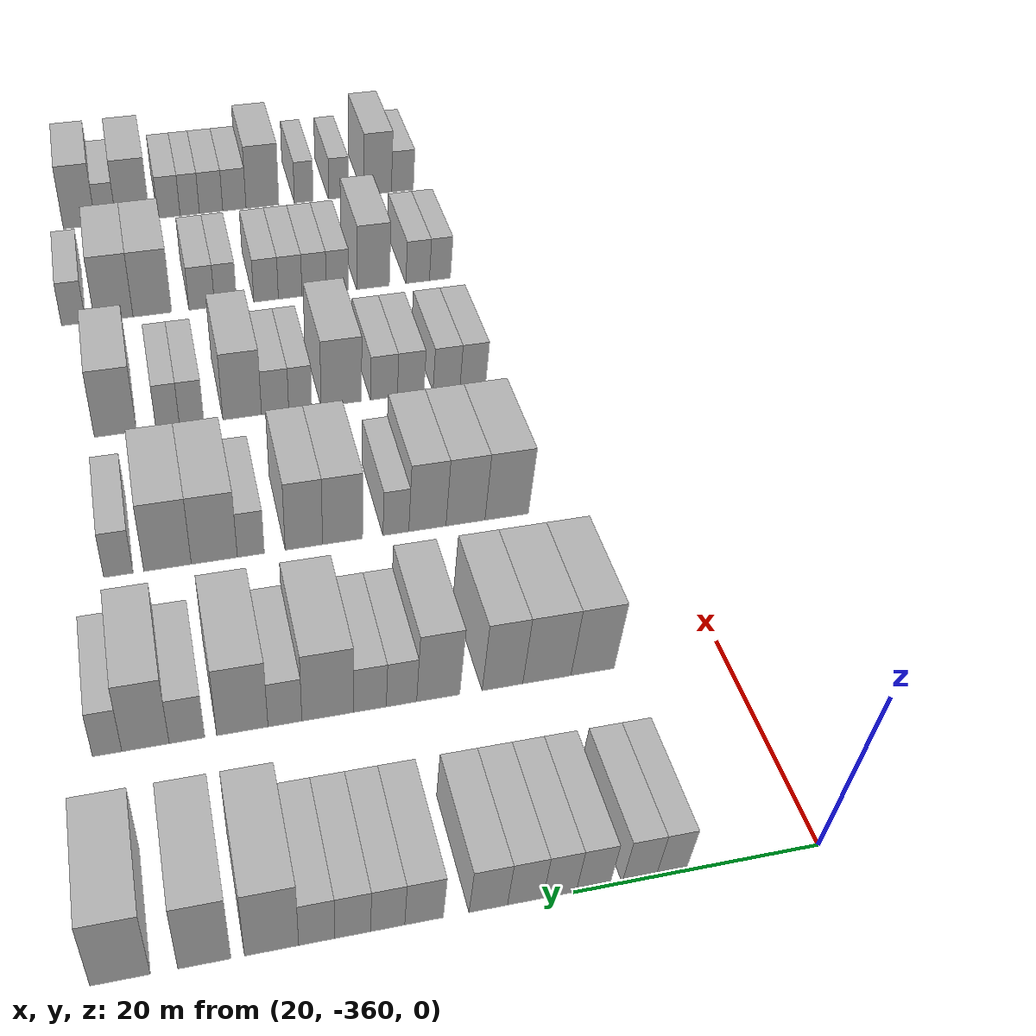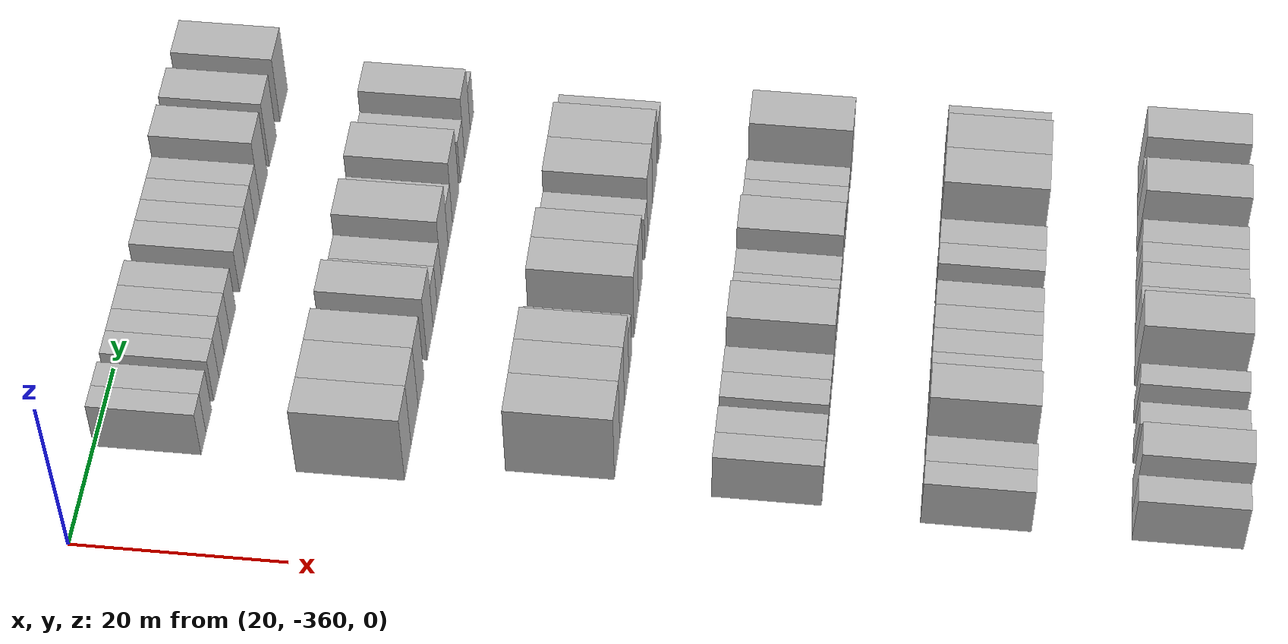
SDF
<sdf version="1.6">
 <world name="default">
  <model name="building_1">
   <static>1</static>
   <pose>25.0000 -347.7870 0 0.000000 0.000000 0.000000</pose>
   <link name="link">
    <pose>0 0 3.00 0 0 0</pose>
    <collision name="collision"><geometry><box><size>10.0000 2.4259 6.0000</size></box></geometry></collision>
    <visual name="visual">
     <cast_shadows>0</cast_shadows>
     <geometry><box><size>10.0000 2.4259 6.0000</size></box></geometry>
     <material>
      <script>
       <uri>model://HANNAS_wall/materials/scripts</uri>
       <uri>model://HANNAS_wall/materials/textures</uri>
       <name>vrc/HANNAS_wall</name>
      </script>
     </material>
    </visual>
   </link>
  </model>
  <model name="building_2">
   <static>1</static>
   <pose>25.0000 -345.2109 0 0.000000 0.000000 0.000000</pose>
   <link name="link">
    <pose>0 0 3.00 0 0 0</pose>
    <collision name="collision"><geometry><box><size>10.0000 2.7264 6.0000</size></box></geometry></collision>
    <visual name="visual">
     <cast_shadows>0</cast_shadows>
     <geometry><box><size>10.0000 2.7264 6.0000</size></box></geometry>
     <material>
      <script>
       <uri>model://HANNAS_wall/materials/scripts</uri>
       <uri>model://HANNAS_wall/materials/textures</uri>
       <name>vrc/HANNAS_wall</name>
      </script>
     </material>
    </visual>
   </link>
  </model>
  <model name="building_3">
   <static>1</static>
   <pose>25.0000 -341.5027 0 0.000000 0.000000 0.000000</pose>
   <link name="link">
    <pose>0 0 3.00 0 0 0</pose>
    <collision name="collision"><geometry><box><size>10.0000 2.6899 6.0000</size></box></geometry></collision>
    <visual name="visual">
     <cast_shadows>0</cast_shadows>
     <geometry><box><size>10.0000 2.6899 6.0000</size></box></geometry>
     <material>
      <script>
       <uri>model://HANNAS_wall/materials/scripts</uri>
       <uri>model://HANNAS_wall/materials/textures</uri>
       <name>vrc/HANNAS_wall</name>
      </script>
     </material>
    </visual>
   </link>
  </model>
  <model name="building_4">
   <static>1</static>
   <pose>25.0000 -338.8449 0 0.000000 0.000000 0.000000</pose>
   <link name="link">
    <pose>0 0 3.00 0 0 0</pose>
    <collision name="collision"><geometry><box><size>10.0000 2.6258 6.0000</size></box></geometry></collision>
    <visual name="visual">
     <cast_shadows>0</cast_shadows>
     <geometry><box><size>10.0000 2.6258 6.0000</size></box></geometry>
     <material>
      <script>
       <uri>model://HANNAS_wall/materials/scripts</uri>
       <uri>model://HANNAS_wall/materials/textures</uri>
       <name>vrc/HANNAS_wall</name>
      </script>
     </material>
    </visual>
   </link>
  </model>
  <model name="building_5">
   <static>1</static>
   <pose>25.0000 -336.1319 0 0.000000 0.000000 0.000000</pose>
   <link name="link">
    <pose>0 0 3.00 0 0 0</pose>
    <collision name="collision"><geometry><box><size>10.0000 2.8000 6.0000</size></box></geometry></collision>
    <visual name="visual">
     <cast_shadows>0</cast_shadows>
     <geometry><box><size>10.0000 2.8000 6.0000</size></box></geometry>
     <material>
      <script>
       <uri>model://HANNAS_wall/materials/scripts</uri>
       <uri>model://HANNAS_wall/materials/textures</uri>
       <name>vrc/HANNAS_wall</name>
      </script>
     </material>
    </visual>
   </link>
  </model>
  <model name="building_6">
   <static>1</static>
   <pose>25.0000 -333.2328 0 0.000000 0.000000 0.000000</pose>
   <link name="link">
    <pose>0 0 3.00 0 0 0</pose>
    <collision name="collision"><geometry><box><size>10.0000 2.9983 6.0000</size></box></geometry></collision>
    <visual name="visual">
     <cast_shadows>0</cast_shadows>
     <geometry><box><size>10.0000 2.9983 6.0000</size></box></geometry>
     <material>
      <script>
       <uri>model://HANNAS_wall/materials/scripts</uri>
       <uri>model://HANNAS_wall/materials/textures</uri>
       <name>vrc/HANNAS_wall</name>
      </script>
     </material>
    </visual>
   </link>
  </model>
  <model name="building_7">
   <static>1</static>
   <pose>25.0000 -328.2507 0 0.000000 0.000000 0.000000</pose>
   <link name="link">
    <pose>0 0 3.00 0 0 0</pose>
    <collision name="collision"><geometry><box><size>10.0000 2.9659 6.0000</size></box></geometry></collision>
    <visual name="visual">
     <cast_shadows>0</cast_shadows>
     <geometry><box><size>10.0000 2.9659 6.0000</size></box></geometry>
     <material>
      <script>
       <uri>model://HANNAS_wall/materials/scripts</uri>
       <uri>model://HANNAS_wall/materials/textures</uri>
       <name>vrc/HANNAS_wall</name>
      </script>
     </material>
    </visual>
   </link>
  </model>
  <model name="building_8">
   <static>1</static>
   <pose>25.0000 -325.4648 0 0.000000 0.000000 0.000000</pose>
   <link name="link">
    <pose>0 0 3.00 0 0 0</pose>
    <collision name="collision"><geometry><box><size>10.0000 2.6061 6.0000</size></box></geometry></collision>
    <visual name="visual">
     <cast_shadows>0</cast_shadows>
     <geometry><box><size>10.0000 2.6061 6.0000</size></box></geometry>
     <material>
      <script>
       <uri>model://HANNAS_wall/materials/scripts</uri>
       <uri>model://HANNAS_wall/materials/textures</uri>
       <name>vrc/HANNAS_wall</name>
      </script>
     </material>
    </visual>
   </link>
  </model>
  <model name="building_9">
   <static>1</static>
   <pose>25.0000 -322.8013 0 0.000000 0.000000 0.000000</pose>
   <link name="link">
    <pose>0 0 3.00 0 0 0</pose>
    <collision name="collision"><geometry><box><size>10.0000 2.7209 6.0000</size></box></geometry></collision>
    <visual name="visual">
     <cast_shadows>0</cast_shadows>
     <geometry><box><size>10.0000 2.7209 6.0000</size></box></geometry>
     <material>
      <script>
       <uri>model://HANNAS_wall/materials/scripts</uri>
       <uri>model://HANNAS_wall/materials/textures</uri>
       <name>vrc/HANNAS_wall</name>
      </script>
     </material>
    </visual>
   </link>
  </model>
  <model name="building_10">
   <static>1</static>
   <pose>25.0000 -320.0898 0 0.000000 0.000000 0.000000</pose>
   <link name="link">
    <pose>0 0 3.00 0 0 0</pose>
    <collision name="collision"><geometry><box><size>10.0000 2.7021 6.0000</size></box></geometry></collision>
    <visual name="visual">
     <cast_shadows>0</cast_shadows>
     <geometry><box><size>10.0000 2.7021 6.0000</size></box></geometry>
     <material>
      <script>
       <uri>model://HANNAS_wall/materials/scripts</uri>
       <uri>model://HANNAS_wall/materials/textures</uri>
       <name>vrc/HANNAS_wall</name>
      </script>
     </material>
    </visual>
   </link>
  </model>
  <model name="building_11">
   <static>1</static>
   <pose>25.0000 -316.7248 0 0.000000 0.000000 0.000000</pose>
   <link name="link">
    <pose>0 0 4.50 0 0 0</pose>
    <collision name="collision"><geometry><box><size>10.0000 4.0278 9.0000</size></box></geometry></collision>
    <visual name="visual">
     <cast_shadows>0</cast_shadows>
     <geometry><box><size>10.0000 4.0278 9.0000</size></box></geometry>
     <material>
      <script>
       <uri>model://HANNAS_wall/materials/scripts</uri>
       <uri>model://HANNAS_wall/materials/textures</uri>
       <name>vrc/HANNAS_wall</name>
      </script>
     </material>
    </visual>
   </link>
  </model>
  <model name="building_12">
   <static>1</static>
   <pose>25.0000 -311.7622 0 0.000000 0.000000 0.000000</pose>
   <link name="link">
    <pose>0 0 4.50 0 0 0</pose>
    <collision name="collision"><geometry><box><size>10.0000 3.8976 9.0000</size></box></geometry></collision>
    <visual name="visual">
     <cast_shadows>0</cast_shadows>
     <geometry><box><size>10.0000 3.8976 9.0000</size></box></geometry>
     <material>
      <script>
       <uri>model://HANNAS_wall/materials/scripts</uri>
       <uri>model://HANNAS_wall/materials/textures</uri>
       <name>vrc/HANNAS_wall</name>
      </script>
     </material>
    </visual>
   </link>
  </model>
  <model name="building_13">
   <static>1</static>
   <pose>25.0000 -305.6335 0 0.000000 0.000000 0.000000</pose>
   <link name="link">
    <pose>0 0 4.50 0 0 0</pose>
    <collision name="collision"><geometry><box><size>10.0000 4.3597 9.0000</size></box></geometry></collision>
    <visual name="visual">
     <cast_shadows>0</cast_shadows>
     <geometry><box><size>10.0000 4.3597 9.0000</size></box></geometry>
     <material>
      <script>
       <uri>model://HANNAS_wall/materials/scripts</uri>
       <uri>model://HANNAS_wall/materials/textures</uri>
       <name>vrc/HANNAS_wall</name>
      </script>
     </material>
    </visual>
   </link>
  </model>
  <model name="building_174">
   <static>1</static>
   <pose>44.0000 -348.0168 0 0.000000 0.000000 0.000000</pose>
   <link name="link">
    <pose>0 0 4.50 0 0 0</pose>
    <collision name="collision"><geometry><box><size>10.0000 3.9663 9.0000</size></box></geometry></collision>
    <visual name="visual">
     <cast_shadows>0</cast_shadows>
     <geometry><box><size>10.0000 3.9663 9.0000</size></box></geometry>
     <material>
      <script>
       <uri>model://HANNAS_wall/materials/scripts</uri>
       <uri>model://HANNAS_wall/materials/textures</uri>
       <name>vrc/HANNAS_wall</name>
      </script>
     </material>
    </visual>
   </link>
  </model>
  <model name="building_175">
   <static>1</static>
   <pose>44.0000 -343.8586 0 0.000000 0.000000 0.000000</pose>
   <link name="link">
    <pose>0 0 4.50 0 0 0</pose>
    <collision name="collision"><geometry><box><size>10.0000 4.3501 9.0000</size></box></geometry></collision>
    <visual name="visual">
     <cast_shadows>0</cast_shadows>
     <geometry><box><size>10.0000 4.3501 9.0000</size></box></geometry>
     <material>
      <script>
       <uri>model://HANNAS_wall/materials/scripts</uri>
       <uri>model://HANNAS_wall/materials/textures</uri>
       <name>vrc/HANNAS_wall</name>
      </script>
     </material>
    </visual>
   </link>
  </model>
  <model name="building_176">
   <static>1</static>
   <pose>44.0000 -339.8633 0 0.000000 0.000000 0.000000</pose>
   <link name="link">
    <pose>0 0 4.50 0 0 0</pose>
    <collision name="collision"><geometry><box><size>10.0000 3.6405 9.0000</size></box></geometry></collision>
    <visual name="visual">
     <cast_shadows>0</cast_shadows>
     <geometry><box><size>10.0000 3.6405 9.0000</size></box></geometry>
     <material>
      <script>
       <uri>model://HANNAS_wall/materials/scripts</uri>
       <uri>model://HANNAS_wall/materials/textures</uri>
       <name>vrc/HANNAS_wall</name>
      </script>
     </material>
    </visual>
   </link>
  </model>
  <model name="building_177">
   <static>1</static>
   <pose>44.0000 -334.1381 0 0.000000 0.000000 0.000000</pose>
   <link name="link">
    <pose>0 0 4.50 0 0 0</pose>
    <collision name="collision"><geometry><box><size>10.0000 3.8100 9.0000</size></box></geometry></collision>
    <visual name="visual">
     <cast_shadows>0</cast_shadows>
     <geometry><box><size>10.0000 3.8100 9.0000</size></box></geometry>
     <material>
      <script>
       <uri>model://HANNAS_wall/materials/scripts</uri>
       <uri>model://HANNAS_wall/materials/textures</uri>
       <name>vrc/HANNAS_wall</name>
      </script>
     </material>
    </visual>
   </link>
  </model>
  <model name="building_178">
   <static>1</static>
   <pose>44.0000 -330.9021 0 0.000000 0.000000 0.000000</pose>
   <link name="link">
    <pose>0 0 3.00 0 0 0</pose>
    <collision name="collision"><geometry><box><size>10.0000 2.6619 6.0000</size></box></geometry></collision>
    <visual name="visual">
     <cast_shadows>0</cast_shadows>
     <geometry><box><size>10.0000 2.6619 6.0000</size></box></geometry>
     <material>
      <script>
       <uri>model://HANNAS_wall/materials/scripts</uri>
       <uri>model://HANNAS_wall/materials/textures</uri>
       <name>vrc/HANNAS_wall</name>
      </script>
     </material>
    </visual>
   </link>
  </model>
  <model name="building_179">
   <static>1</static>
   <pose>44.0000 -328.1384 0 0.000000 0.000000 0.000000</pose>
   <link name="link">
    <pose>0 0 3.00 0 0 0</pose>
    <collision name="collision"><geometry><box><size>10.0000 2.8656 6.0000</size></box></geometry></collision>
    <visual name="visual">
     <cast_shadows>0</cast_shadows>
     <geometry><box><size>10.0000 2.8656 6.0000</size></box></geometry>
     <material>
      <script>
       <uri>model://HANNAS_wall/materials/scripts</uri>
       <uri>model://HANNAS_wall/materials/textures</uri>
       <name>vrc/HANNAS_wall</name>
      </script>
     </material>
    </visual>
   </link>
  </model>
  <model name="building_180">
   <static>1</static>
   <pose>44.0000 -324.4866 0 0.000000 0.000000 0.000000</pose>
   <link name="link">
    <pose>0 0 4.50 0 0 0</pose>
    <collision name="collision"><geometry><box><size>10.0000 4.4379 9.0000</size></box></geometry></collision>
    <visual name="visual">
     <cast_shadows>0</cast_shadows>
     <geometry><box><size>10.0000 4.4379 9.0000</size></box></geometry>
     <material>
      <script>
       <uri>model://HANNAS_wall/materials/scripts</uri>
       <uri>model://HANNAS_wall/materials/textures</uri>
       <name>vrc/HANNAS_wall</name>
      </script>
     </material>
    </visual>
   </link>
  </model>
  <model name="building_181">
   <static>1</static>
   <pose>44.0000 -320.8211 0 0.000000 0.000000 0.000000</pose>
   <link name="link">
    <pose>0 0 3.00 0 0 0</pose>
    <collision name="collision"><geometry><box><size>10.0000 2.8930 6.0000</size></box></geometry></collision>
    <visual name="visual">
     <cast_shadows>0</cast_shadows>
     <geometry><box><size>10.0000 2.8930 6.0000</size></box></geometry>
     <material>
      <script>
       <uri>model://HANNAS_wall/materials/scripts</uri>
       <uri>model://HANNAS_wall/materials/textures</uri>
       <name>vrc/HANNAS_wall</name>
      </script>
     </material>
    </visual>
   </link>
  </model>
  <model name="building_182">
   <static>1</static>
   <pose>44.0000 -317.2019 0 0.000000 0.000000 0.000000</pose>
   <link name="link">
    <pose>0 0 4.50 0 0 0</pose>
    <collision name="collision"><geometry><box><size>10.0000 4.3454 9.0000</size></box></geometry></collision>
    <visual name="visual">
     <cast_shadows>0</cast_shadows>
     <geometry><box><size>10.0000 4.3454 9.0000</size></box></geometry>
     <material>
      <script>
       <uri>model://HANNAS_wall/materials/scripts</uri>
       <uri>model://HANNAS_wall/materials/textures</uri>
       <name>vrc/HANNAS_wall</name>
      </script>
     </material>
    </visual>
   </link>
  </model>
  <model name="building_183">
   <static>1</static>
   <pose>44.0000 -312.5420 0 0.000000 0.000000 0.000000</pose>
   <link name="link">
    <pose>0 0 3.00 0 0 0</pose>
    <collision name="collision"><geometry><box><size>10.0000 2.9745 6.0000</size></box></geometry></collision>
    <visual name="visual">
     <cast_shadows>0</cast_shadows>
     <geometry><box><size>10.0000 2.9745 6.0000</size></box></geometry>
     <material>
      <script>
       <uri>model://HANNAS_wall/materials/scripts</uri>
       <uri>model://HANNAS_wall/materials/textures</uri>
       <name>vrc/HANNAS_wall</name>
      </script>
     </material>
    </visual>
   </link>
  </model>
  <model name="building_184">
   <static>1</static>
   <pose>44.0000 -309.0923 0 0.000000 0.000000 0.000000</pose>
   <link name="link">
    <pose>0 0 4.50 0 0 0</pose>
    <collision name="collision"><geometry><box><size>10.0000 3.9250 9.0000</size></box></geometry></collision>
    <visual name="visual">
     <cast_shadows>0</cast_shadows>
     <geometry><box><size>10.0000 3.9250 9.0000</size></box></geometry>
     <material>
      <script>
       <uri>model://HANNAS_wall/materials/scripts</uri>
       <uri>model://HANNAS_wall/materials/textures</uri>
       <name>vrc/HANNAS_wall</name>
      </script>
     </material>
    </visual>
   </link>
  </model>
  <model name="building_185">
   <static>1</static>
   <pose>44.0000 -305.9198 0 0.000000 0.000000 0.000000</pose>
   <link name="link">
    <pose>0 0 3.00 0 0 0</pose>
    <collision name="collision"><geometry><box><size>10.0000 2.4200 6.0000</size></box></geometry></collision>
    <visual name="visual">
     <cast_shadows>0</cast_shadows>
     <geometry><box><size>10.0000 2.4200 6.0000</size></box></geometry>
     <material>
      <script>
       <uri>model://HANNAS_wall/materials/scripts</uri>
       <uri>model://HANNAS_wall/materials/textures</uri>
       <name>vrc/HANNAS_wall</name>
      </script>
     </material>
    </visual>
   </link>
  </model>
  <model name="building_353">
   <static>1</static>
   <pose>63.0000 -345.8033 0 0.000000 0.000000 0.000000</pose>
   <link name="link">
    <pose>0 0 4.50 0 0 0</pose>
    <collision name="collision"><geometry><box><size>10.0000 4.3935 9.0000</size></box></geometry></collision>
    <visual name="visual">
     <cast_shadows>0</cast_shadows>
     <geometry><box><size>10.0000 4.3935 9.0000</size></box></geometry>
     <material>
      <script>
       <uri>model://HANNAS_wall/materials/scripts</uri>
       <uri>model://HANNAS_wall/materials/textures</uri>
       <name>vrc/HANNAS_wall</name>
      </script>
     </material>
    </visual>
   </link>
  </model>
  <model name="building_354">
   <static>1</static>
   <pose>63.0000 -341.6544 0 0.000000 0.000000 0.000000</pose>
   <link name="link">
    <pose>0 0 4.50 0 0 0</pose>
    <collision name="collision"><geometry><box><size>10.0000 3.9043 9.0000</size></box></geometry></collision>
    <visual name="visual">
     <cast_shadows>0</cast_shadows>
     <geometry><box><size>10.0000 3.9043 9.0000</size></box></geometry>
     <material>
      <script>
       <uri>model://HANNAS_wall/materials/scripts</uri>
       <uri>model://HANNAS_wall/materials/textures</uri>
       <name>vrc/HANNAS_wall</name>
      </script>
     </material>
    </visual>
   </link>
  </model>
  <model name="building_355">
   <static>1</static>
   <pose>63.0000 -337.8542 0 0.000000 0.000000 0.000000</pose>
   <link name="link">
    <pose>0 0 4.50 0 0 0</pose>
    <collision name="collision"><geometry><box><size>10.0000 3.6960 9.0000</size></box></geometry></collision>
    <visual name="visual">
     <cast_shadows>0</cast_shadows>
     <geometry><box><size>10.0000 3.6960 9.0000</size></box></geometry>
     <material>
      <script>
       <uri>model://HANNAS_wall/materials/scripts</uri>
       <uri>model://HANNAS_wall/materials/textures</uri>
       <name>vrc/HANNAS_wall</name>
      </script>
     </material>
    </visual>
   </link>
  </model>
  <model name="building_356">
   <static>1</static>
   <pose>63.0000 -334.7318 0 0.000000 0.000000 0.000000</pose>
   <link name="link">
    <pose>0 0 3.00 0 0 0</pose>
    <collision name="collision"><geometry><box><size>10.0000 2.5488 6.0000</size></box></geometry></collision>
    <visual name="visual">
     <cast_shadows>0</cast_shadows>
     <geometry><box><size>10.0000 2.5488 6.0000</size></box></geometry>
     <material>
      <script>
       <uri>model://HANNAS_wall/materials/scripts</uri>
       <uri>model://HANNAS_wall/materials/textures</uri>
       <name>vrc/HANNAS_wall</name>
      </script>
     </material>
    </visual>
   </link>
  </model>
  <model name="building_357">
   <static>1</static>
   <pose>63.0000 -329.5067 0 0.000000 0.000000 0.000000</pose>
   <link name="link">
    <pose>0 0 4.50 0 0 0</pose>
    <collision name="collision"><geometry><box><size>10.0000 3.9013 9.0000</size></box></geometry></collision>
    <visual name="visual">
     <cast_shadows>0</cast_shadows>
     <geometry><box><size>10.0000 3.9013 9.0000</size></box></geometry>
     <material>
      <script>
       <uri>model://HANNAS_wall/materials/scripts</uri>
       <uri>model://HANNAS_wall/materials/textures</uri>
       <name>vrc/HANNAS_wall</name>
      </script>
     </material>
    </visual>
   </link>
  </model>
  <model name="building_358">
   <static>1</static>
   <pose>63.0000 -325.7522 0 0.000000 0.000000 0.000000</pose>
   <link name="link">
    <pose>0 0 4.50 0 0 0</pose>
    <collision name="collision"><geometry><box><size>10.0000 3.6078 9.0000</size></box></geometry></collision>
    <visual name="visual">
     <cast_shadows>0</cast_shadows>
     <geometry><box><size>10.0000 3.6078 9.0000</size></box></geometry>
     <material>
      <script>
       <uri>model://HANNAS_wall/materials/scripts</uri>
       <uri>model://HANNAS_wall/materials/textures</uri>
       <name>vrc/HANNAS_wall</name>
      </script>
     </material>
    </visual>
   </link>
  </model>
  <model name="building_359">
   <static>1</static>
   <pose>63.0000 -320.6595 0 0.000000 0.000000 0.000000</pose>
   <link name="link">
    <pose>0 0 3.00 0 0 0</pose>
    <collision name="collision"><geometry><box><size>10.0000 2.5776 6.0000</size></box></geometry></collision>
    <visual name="visual">
     <cast_shadows>0</cast_shadows>
     <geometry><box><size>10.0000 2.5776 6.0000</size></box></geometry>
     <material>
      <script>
       <uri>model://HANNAS_wall/materials/scripts</uri>
       <uri>model://HANNAS_wall/materials/textures</uri>
       <name>vrc/HANNAS_wall</name>
      </script>
     </material>
    </visual>
   </link>
  </model>
  <model name="building_360">
   <static>1</static>
   <pose>63.0000 -317.1884 0 0.000000 0.000000 0.000000</pose>
   <link name="link">
    <pose>0 0 4.50 0 0 0</pose>
    <collision name="collision"><geometry><box><size>10.0000 4.3645 9.0000</size></box></geometry></collision>
    <visual name="visual">
     <cast_shadows>0</cast_shadows>
     <geometry><box><size>10.0000 4.3645 9.0000</size></box></geometry>
     <material>
      <script>
       <uri>model://HANNAS_wall/materials/scripts</uri>
       <uri>model://HANNAS_wall/materials/textures</uri>
       <name>vrc/HANNAS_wall</name>
      </script>
     </material>
    </visual>
   </link>
  </model>
  <model name="building_361">
   <static>1</static>
   <pose>63.0000 -312.7779 0 0.000000 0.000000 0.000000</pose>
   <link name="link">
    <pose>0 0 4.50 0 0 0</pose>
    <collision name="collision"><geometry><box><size>10.0000 4.4565 9.0000</size></box></geometry></collision>
    <visual name="visual">
     <cast_shadows>0</cast_shadows>
     <geometry><box><size>10.0000 4.4565 9.0000</size></box></geometry>
     <material>
      <script>
       <uri>model://HANNAS_wall/materials/scripts</uri>
       <uri>model://HANNAS_wall/materials/textures</uri>
       <name>vrc/HANNAS_wall</name>
      </script>
     </material>
    </visual>
   </link>
  </model>
  <model name="building_362">
   <static>1</static>
   <pose>63.0000 -308.1806 0 0.000000 0.000000 0.000000</pose>
   <link name="link">
    <pose>0 0 3.00 0 0 0</pose>
    <collision name="collision"><geometry><box><size>10.0000 2.7381 6.0000</size></box></geometry></collision>
    <visual name="visual">
     <cast_shadows>0</cast_shadows>
     <geometry><box><size>10.0000 2.7381 6.0000</size></box></geometry>
     <material>
      <script>
       <uri>model://HANNAS_wall/materials/scripts</uri>
       <uri>model://HANNAS_wall/materials/textures</uri>
       <name>vrc/HANNAS_wall</name>
      </script>
     </material>
    </visual>
   </link>
  </model>
  <model name="building_525">
   <static>1</static>
   <pose>82.0000 -347.5688 0 0.000000 0.000000 0.000000</pose>
   <link name="link">
    <pose>0 0 3.00 0 0 0</pose>
    <collision name="collision"><geometry><box><size>10.0000 2.8623 6.0000</size></box></geometry></collision>
    <visual name="visual">
     <cast_shadows>0</cast_shadows>
     <geometry><box><size>10.0000 2.8623 6.0000</size></box></geometry>
     <material>
      <script>
       <uri>model://HANNAS_wall/materials/scripts</uri>
       <uri>model://HANNAS_wall/materials/textures</uri>
       <name>vrc/HANNAS_wall</name>
      </script>
     </material>
    </visual>
   </link>
  </model>
  <model name="building_526">
   <static>1</static>
   <pose>82.0000 -344.6401 0 0.000000 0.000000 0.000000</pose>
   <link name="link">
    <pose>0 0 3.00 0 0 0</pose>
    <collision name="collision"><geometry><box><size>10.0000 2.9951 6.0000</size></box></geometry></collision>
    <visual name="visual">
     <cast_shadows>0</cast_shadows>
     <geometry><box><size>10.0000 2.9951 6.0000</size></box></geometry>
     <material>
      <script>
       <uri>model://HANNAS_wall/materials/scripts</uri>
       <uri>model://HANNAS_wall/materials/textures</uri>
       <name>vrc/HANNAS_wall</name>
      </script>
     </material>
    </visual>
   </link>
  </model>
  <model name="building_527">
   <static>1</static>
   <pose>82.0000 -340.6774 0 0.000000 0.000000 0.000000</pose>
   <link name="link">
    <pose>0 0 3.00 0 0 0</pose>
    <collision name="collision"><geometry><box><size>10.0000 2.9303 6.0000</size></box></geometry></collision>
    <visual name="visual">
     <cast_shadows>0</cast_shadows>
     <geometry><box><size>10.0000 2.9303 6.0000</size></box></geometry>
     <material>
      <script>
       <uri>model://HANNAS_wall/materials/scripts</uri>
       <uri>model://HANNAS_wall/materials/textures</uri>
       <name>vrc/HANNAS_wall</name>
      </script>
     </material>
    </visual>
   </link>
  </model>
  <model name="building_528">
   <static>1</static>
   <pose>82.0000 -337.7414 0 0.000000 0.000000 0.000000</pose>
   <link name="link">
    <pose>0 0 3.00 0 0 0</pose>
    <collision name="collision"><geometry><box><size>10.0000 2.9418 6.0000</size></box></geometry></collision>
    <visual name="visual">
     <cast_shadows>0</cast_shadows>
     <geometry><box><size>10.0000 2.9418 6.0000</size></box></geometry>
     <material>
      <script>
       <uri>model://HANNAS_wall/materials/scripts</uri>
       <uri>model://HANNAS_wall/materials/textures</uri>
       <name>vrc/HANNAS_wall</name>
      </script>
     </material>
    </visual>
   </link>
  </model>
  <model name="building_529">
   <static>1</static>
   <pose>82.0000 -333.0892 0 0.000000 0.000000 0.000000</pose>
   <link name="link">
    <pose>0 0 4.50 0 0 0</pose>
    <collision name="collision"><geometry><box><size>10.0000 4.3626 9.0000</size></box></geometry></collision>
    <visual name="visual">
     <cast_shadows>0</cast_shadows>
     <geometry><box><size>10.0000 4.3626 9.0000</size></box></geometry>
     <material>
      <script>
       <uri>model://HANNAS_wall/materials/scripts</uri>
       <uri>model://HANNAS_wall/materials/textures</uri>
       <name>vrc/HANNAS_wall</name>
      </script>
     </material>
    </visual>
   </link>
  </model>
  <model name="building_530">
   <static>1</static>
   <pose>82.0000 -328.6722 0 0.000000 0.000000 0.000000</pose>
   <link name="link">
    <pose>0 0 3.00 0 0 0</pose>
    <collision name="collision"><geometry><box><size>10.0000 2.4714 6.0000</size></box></geometry></collision>
    <visual name="visual">
     <cast_shadows>0</cast_shadows>
     <geometry><box><size>10.0000 2.4714 6.0000</size></box></geometry>
     <material>
      <script>
       <uri>model://HANNAS_wall/materials/scripts</uri>
       <uri>model://HANNAS_wall/materials/textures</uri>
       <name>vrc/HANNAS_wall</name>
      </script>
     </material>
    </visual>
   </link>
  </model>
  <model name="building_531">
   <static>1</static>
   <pose>82.0000 -325.9868 0 0.000000 0.000000 0.000000</pose>
   <link name="link">
    <pose>0 0 3.00 0 0 0</pose>
    <collision name="collision"><geometry><box><size>10.0000 2.8993 6.0000</size></box></geometry></collision>
    <visual name="visual">
     <cast_shadows>0</cast_shadows>
     <geometry><box><size>10.0000 2.8993 6.0000</size></box></geometry>
     <material>
      <script>
       <uri>model://HANNAS_wall/materials/scripts</uri>
       <uri>model://HANNAS_wall/materials/textures</uri>
       <name>vrc/HANNAS_wall</name>
      </script>
     </material>
    </visual>
   </link>
  </model>
  <model name="building_532">
   <static>1</static>
   <pose>82.0000 -322.4855 0 0.000000 0.000000 0.000000</pose>
   <link name="link">
    <pose>0 0 4.50 0 0 0</pose>
    <collision name="collision"><geometry><box><size>10.0000 4.1034 9.0000</size></box></geometry></collision>
    <visual name="visual">
     <cast_shadows>0</cast_shadows>
     <geometry><box><size>10.0000 4.1034 9.0000</size></box></geometry>
     <material>
      <script>
       <uri>model://HANNAS_wall/materials/scripts</uri>
       <uri>model://HANNAS_wall/materials/textures</uri>
       <name>vrc/HANNAS_wall</name>
      </script>
     </material>
    </visual>
   </link>
  </model>
  <model name="building_533">
   <static>1</static>
   <pose>82.0000 -317.1500 0 0.000000 0.000000 0.000000</pose>
   <link name="link">
    <pose>0 0 3.00 0 0 0</pose>
    <collision name="collision"><geometry><box><size>10.0000 2.5675 6.0000</size></box></geometry></collision>
    <visual name="visual">
     <cast_shadows>0</cast_shadows>
     <geometry><box><size>10.0000 2.5675 6.0000</size></box></geometry>
     <material>
      <script>
       <uri>model://HANNAS_wall/materials/scripts</uri>
       <uri>model://HANNAS_wall/materials/textures</uri>
       <name>vrc/HANNAS_wall</name>
      </script>
     </material>
    </visual>
   </link>
  </model>
  <model name="building_534">
   <static>1</static>
   <pose>82.0000 -314.6392 0 0.000000 0.000000 0.000000</pose>
   <link name="link">
    <pose>0 0 3.00 0 0 0</pose>
    <collision name="collision"><geometry><box><size>10.0000 2.4542 6.0000</size></box></geometry></collision>
    <visual name="visual">
     <cast_shadows>0</cast_shadows>
     <geometry><box><size>10.0000 2.4542 6.0000</size></box></geometry>
     <material>
      <script>
       <uri>model://HANNAS_wall/materials/scripts</uri>
       <uri>model://HANNAS_wall/materials/textures</uri>
       <name>vrc/HANNAS_wall</name>
      </script>
     </material>
    </visual>
   </link>
  </model>
  <model name="building_535">
   <static>1</static>
   <pose>82.0000 -309.2268 0 0.000000 0.000000 0.000000</pose>
   <link name="link">
    <pose>0 0 4.50 0 0 0</pose>
    <collision name="collision"><geometry><box><size>10.0000 4.3707 9.0000</size></box></geometry></collision>
    <visual name="visual">
     <cast_shadows>0</cast_shadows>
     <geometry><box><size>10.0000 4.3707 9.0000</size></box></geometry>
     <material>
      <script>
       <uri>model://HANNAS_wall/materials/scripts</uri>
       <uri>model://HANNAS_wall/materials/textures</uri>
       <name>vrc/HANNAS_wall</name>
      </script>
     </material>
    </visual>
   </link>
  </model>
  <model name="building_696">
   <static>1</static>
   <pose>101.0000 -348.7224 0 0.000000 0.000000 0.000000</pose>
   <link name="link">
    <pose>0 0 3.00 0 0 0</pose>
    <collision name="collision"><geometry><box><size>10.0000 2.5553 6.0000</size></box></geometry></collision>
    <visual name="visual">
     <cast_shadows>0</cast_shadows>
     <geometry><box><size>10.0000 2.5553 6.0000</size></box></geometry>
     <material>
      <script>
       <uri>model://HANNAS_wall/materials/scripts</uri>
       <uri>model://HANNAS_wall/materials/textures</uri>
       <name>vrc/HANNAS_wall</name>
      </script>
     </material>
    </visual>
   </link>
  </model>
  <model name="building_697">
   <static>1</static>
   <pose>101.0000 -346.0125 0 0.000000 0.000000 0.000000</pose>
   <link name="link">
    <pose>0 0 3.00 0 0 0</pose>
    <collision name="collision"><geometry><box><size>10.0000 2.8643 6.0000</size></box></geometry></collision>
    <visual name="visual">
     <cast_shadows>0</cast_shadows>
     <geometry><box><size>10.0000 2.8643 6.0000</size></box></geometry>
     <material>
      <script>
       <uri>model://HANNAS_wall/materials/scripts</uri>
       <uri>model://HANNAS_wall/materials/textures</uri>
       <name>vrc/HANNAS_wall</name>
      </script>
     </material>
    </visual>
   </link>
  </model>
  <model name="building_698">
   <static>1</static>
   <pose>101.0000 -340.6191 0 0.000000 0.000000 0.000000</pose>
   <link name="link">
    <pose>0 0 4.50 0 0 0</pose>
    <collision name="collision"><geometry><box><size>10.0000 3.9225 9.0000</size></box></geometry></collision>
    <visual name="visual">
     <cast_shadows>0</cast_shadows>
     <geometry><box><size>10.0000 3.9225 9.0000</size></box></geometry>
     <material>
      <script>
       <uri>model://HANNAS_wall/materials/scripts</uri>
       <uri>model://HANNAS_wall/materials/textures</uri>
       <name>vrc/HANNAS_wall</name>
      </script>
     </material>
    </visual>
   </link>
  </model>
  <model name="building_699">
   <static>1</static>
   <pose>101.0000 -336.3259 0 0.000000 0.000000 0.000000</pose>
   <link name="link">
    <pose>0 0 3.00 0 0 0</pose>
    <collision name="collision"><geometry><box><size>10.0000 2.6639 6.0000</size></box></geometry></collision>
    <visual name="visual">
     <cast_shadows>0</cast_shadows>
     <geometry><box><size>10.0000 2.6639 6.0000</size></box></geometry>
     <material>
      <script>
       <uri>model://HANNAS_wall/materials/scripts</uri>
       <uri>model://HANNAS_wall/materials/textures</uri>
       <name>vrc/HANNAS_wall</name>
      </script>
     </material>
    </visual>
   </link>
  </model>
  <model name="building_700">
   <static>1</static>
   <pose>101.0000 -333.5692 0 0.000000 0.000000 0.000000</pose>
   <link name="link">
    <pose>0 0 3.00 0 0 0</pose>
    <collision name="collision"><geometry><box><size>10.0000 2.8496 6.0000</size></box></geometry></collision>
    <visual name="visual">
     <cast_shadows>0</cast_shadows>
     <geometry><box><size>10.0000 2.8496 6.0000</size></box></geometry>
     <material>
      <script>
       <uri>model://HANNAS_wall/materials/scripts</uri>
       <uri>model://HANNAS_wall/materials/textures</uri>
       <name>vrc/HANNAS_wall</name>
      </script>
     </material>
    </visual>
   </link>
  </model>
  <model name="building_701">
   <static>1</static>
   <pose>101.0000 -330.7544 0 0.000000 0.000000 0.000000</pose>
   <link name="link">
    <pose>0 0 3.00 0 0 0</pose>
    <collision name="collision"><geometry><box><size>10.0000 2.7800 6.0000</size></box></geometry></collision>
    <visual name="visual">
     <cast_shadows>0</cast_shadows>
     <geometry><box><size>10.0000 2.7800 6.0000</size></box></geometry>
     <material>
      <script>
       <uri>model://HANNAS_wall/materials/scripts</uri>
       <uri>model://HANNAS_wall/materials/textures</uri>
       <name>vrc/HANNAS_wall</name>
      </script>
     </material>
    </visual>
   </link>
  </model>
  <model name="building_702">
   <static>1</static>
   <pose>101.0000 -327.9245 0 0.000000 0.000000 0.000000</pose>
   <link name="link">
    <pose>0 0 3.00 0 0 0</pose>
    <collision name="collision"><geometry><box><size>10.0000 2.8799 6.0000</size></box></geometry></collision>
    <visual name="visual">
     <cast_shadows>0</cast_shadows>
     <geometry><box><size>10.0000 2.8799 6.0000</size></box></geometry>
     <material>
      <script>
       <uri>model://HANNAS_wall/materials/scripts</uri>
       <uri>model://HANNAS_wall/materials/textures</uri>
       <name>vrc/HANNAS_wall</name>
      </script>
     </material>
    </visual>
   </link>
  </model>
  <model name="building_703">
   <static>1</static>
   <pose>101.0000 -323.2012 0 0.000000 0.000000 0.000000</pose>
   <link name="link">
    <pose>0 0 3.00 0 0 0</pose>
    <collision name="collision"><geometry><box><size>10.0000 2.5668 6.0000</size></box></geometry></collision>
    <visual name="visual">
     <cast_shadows>0</cast_shadows>
     <geometry><box><size>10.0000 2.5668 6.0000</size></box></geometry>
     <material>
      <script>
       <uri>model://HANNAS_wall/materials/scripts</uri>
       <uri>model://HANNAS_wall/materials/textures</uri>
       <name>vrc/HANNAS_wall</name>
      </script>
     </material>
    </visual>
   </link>
  </model>
  <model name="building_704">
   <static>1</static>
   <pose>101.0000 -320.4326 0 0.000000 0.000000 0.000000</pose>
   <link name="link">
    <pose>0 0 3.00 0 0 0</pose>
    <collision name="collision"><geometry><box><size>10.0000 2.9705 6.0000</size></box></geometry></collision>
    <visual name="visual">
     <cast_shadows>0</cast_shadows>
     <geometry><box><size>10.0000 2.9705 6.0000</size></box></geometry>
     <material>
      <script>
       <uri>model://HANNAS_wall/materials/scripts</uri>
       <uri>model://HANNAS_wall/materials/textures</uri>
       <name>vrc/HANNAS_wall</name>
      </script>
     </material>
    </visual>
   </link>
  </model>
  <model name="building_705">
   <static>1</static>
   <pose>101.0000 -314.7330 0 0.000000 0.000000 0.000000</pose>
   <link name="link">
    <pose>0 0 4.50 0 0 0</pose>
    <collision name="collision"><geometry><box><size>10.0000 4.4287 9.0000</size></box></geometry></collision>
    <visual name="visual">
     <cast_shadows>0</cast_shadows>
     <geometry><box><size>10.0000 4.4287 9.0000</size></box></geometry>
     <material>
      <script>
       <uri>model://HANNAS_wall/materials/scripts</uri>
       <uri>model://HANNAS_wall/materials/textures</uri>
       <name>vrc/HANNAS_wall</name>
      </script>
     </material>
    </visual>
   </link>
  </model>
  <model name="building_706">
   <static>1</static>
   <pose>101.0000 -310.3311 0 0.000000 0.000000 0.000000</pose>
   <link name="link">
    <pose>0 0 4.50 0 0 0</pose>
    <collision name="collision"><geometry><box><size>10.0000 4.3750 9.0000</size></box></geometry></collision>
    <visual name="visual">
     <cast_shadows>0</cast_shadows>
     <geometry><box><size>10.0000 4.3750 9.0000</size></box></geometry>
     <material>
      <script>
       <uri>model://HANNAS_wall/materials/scripts</uri>
       <uri>model://HANNAS_wall/materials/textures</uri>
       <name>vrc/HANNAS_wall</name>
      </script>
     </material>
    </visual>
   </link>
  </model>
  <model name="building_707">
   <static>1</static>
   <pose>101.0000 -305.7882 0 0.000000 0.000000 0.000000</pose>
   <link name="link">
    <pose>0 0 3.00 0 0 0</pose>
    <collision name="collision"><geometry><box><size>10.0000 2.7108 6.0000</size></box></geometry></collision>
    <visual name="visual">
     <cast_shadows>0</cast_shadows>
     <geometry><box><size>10.0000 2.7108 6.0000</size></box></geometry>
     <material>
      <script>
       <uri>model://HANNAS_wall/materials/scripts</uri>
       <uri>model://HANNAS_wall/materials/textures</uri>
       <name>vrc/HANNAS_wall</name>
      </script>
     </material>
    </visual>
   </link>
  </model>
  <model name="building_872">
   <static>1</static>
   <pose>120.0000 -348.5488 0 0.000000 0.000000 0.000000</pose>
   <link name="link">
    <pose>0 0 3.00 0 0 0</pose>
    <collision name="collision"><geometry><box><size>10.0000 2.9024 6.0000</size></box></geometry></collision>
    <visual name="visual">
     <cast_shadows>0</cast_shadows>
     <geometry><box><size>10.0000 2.9024 6.0000</size></box></geometry>
     <material>
      <script>
       <uri>model://HANNAS_wall/materials/scripts</uri>
       <uri>model://HANNAS_wall/materials/textures</uri>
       <name>vrc/HANNAS_wall</name>
      </script>
     </material>
    </visual>
   </link>
  </model>
  <model name="building_873">
   <static>1</static>
   <pose>120.0000 -345.2602 0 0.000000 0.000000 0.000000</pose>
   <link name="link">
    <pose>0 0 4.50 0 0 0</pose>
    <collision name="collision"><geometry><box><size>10.0000 3.6749 9.0000</size></box></geometry></collision>
    <visual name="visual">
     <cast_shadows>0</cast_shadows>
     <geometry><box><size>10.0000 3.6749 9.0000</size></box></geometry>
     <material>
      <script>
       <uri>model://HANNAS_wall/materials/scripts</uri>
       <uri>model://HANNAS_wall/materials/textures</uri>
       <name>vrc/HANNAS_wall</name>
      </script>
     </material>
    </visual>
   </link>
  </model>
  <model name="building_874">
   <static>1</static>
   <pose>120.0000 -340.1521 0 0.000000 0.000000 0.000000</pose>
   <link name="link">
    <pose>0 0 3.00 0 0 0</pose>
    <collision name="collision"><geometry><box><size>10.0000 2.5413 6.0000</size></box></geometry></collision>
    <visual name="visual">
     <cast_shadows>0</cast_shadows>
     <geometry><box><size>10.0000 2.5413 6.0000</size></box></geometry>
     <material>
      <script>
       <uri>model://HANNAS_wall/materials/scripts</uri>
       <uri>model://HANNAS_wall/materials/textures</uri>
       <name>vrc/HANNAS_wall</name>
      </script>
     </material>
    </visual>
   </link>
  </model>
  <model name="building_875">
   <static>1</static>
   <pose>120.0000 -335.6694 0 0.000000 0.000000 0.000000</pose>
   <link name="link">
    <pose>0 0 3.00 0 0 0</pose>
    <collision name="collision"><geometry><box><size>10.0000 2.4242 6.0000</size></box></geometry></collision>
    <visual name="visual">
     <cast_shadows>0</cast_shadows>
     <geometry><box><size>10.0000 2.4242 6.0000</size></box></geometry>
     <material>
      <script>
       <uri>model://HANNAS_wall/materials/scripts</uri>
       <uri>model://HANNAS_wall/materials/textures</uri>
       <name>vrc/HANNAS_wall</name>
      </script>
     </material>
    </visual>
   </link>
  </model>
  <model name="building_876">
   <static>1</static>
   <pose>120.0000 -330.3608 0 0.000000 0.000000 0.000000</pose>
   <link name="link">
    <pose>0 0 4.50 0 0 0</pose>
    <collision name="collision"><geometry><box><size>10.0000 4.1929 9.0000</size></box></geometry></collision>
    <visual name="visual">
     <cast_shadows>0</cast_shadows>
     <geometry><box><size>10.0000 4.1929 9.0000</size></box></geometry>
     <material>
      <script>
       <uri>model://HANNAS_wall/materials/scripts</uri>
       <uri>model://HANNAS_wall/materials/textures</uri>
       <name>vrc/HANNAS_wall</name>
      </script>
     </material>
    </visual>
   </link>
  </model>
  <model name="building_877">
   <static>1</static>
   <pose>120.0000 -326.7809 0 0.000000 0.000000 0.000000</pose>
   <link name="link">
    <pose>0 0 3.00 0 0 0</pose>
    <collision name="collision"><geometry><box><size>10.0000 2.9670 6.0000</size></box></geometry></collision>
    <visual name="visual">
     <cast_shadows>0</cast_shadows>
     <geometry><box><size>10.0000 2.9670 6.0000</size></box></geometry>
     <material>
      <script>
       <uri>model://HANNAS_wall/materials/scripts</uri>
       <uri>model://HANNAS_wall/materials/textures</uri>
       <name>vrc/HANNAS_wall</name>
      </script>
     </material>
    </visual>
   </link>
  </model>
  <model name="building_878">
   <static>1</static>
   <pose>120.0000 -323.8185 0 0.000000 0.000000 0.000000</pose>
   <link name="link">
    <pose>0 0 3.00 0 0 0</pose>
    <collision name="collision"><geometry><box><size>10.0000 2.9578 6.0000</size></box></geometry></collision>
    <visual name="visual">
     <cast_shadows>0</cast_shadows>
     <geometry><box><size>10.0000 2.9578 6.0000</size></box></geometry>
     <material>
      <script>
       <uri>model://HANNAS_wall/materials/scripts</uri>
       <uri>model://HANNAS_wall/materials/textures</uri>
       <name>vrc/HANNAS_wall</name>
      </script>
     </material>
    </visual>
   </link>
  </model>
  <model name="building_879">
   <static>1</static>
   <pose>120.0000 -321.1224 0 0.000000 0.000000 0.000000</pose>
   <link name="link">
    <pose>0 0 3.00 0 0 0</pose>
    <collision name="collision"><geometry><box><size>10.0000 2.4344 6.0000</size></box></geometry></collision>
    <visual name="visual">
     <cast_shadows>0</cast_shadows>
     <geometry><box><size>10.0000 2.4344 6.0000</size></box></geometry>
     <material>
      <script>
       <uri>model://HANNAS_wall/materials/scripts</uri>
       <uri>model://HANNAS_wall/materials/textures</uri>
       <name>vrc/HANNAS_wall</name>
      </script>
     </material>
    </visual>
   </link>
  </model>
  <model name="building_880">
   <static>1</static>
   <pose>120.0000 -318.5108 0 0.000000 0.000000 0.000000</pose>
   <link name="link">
    <pose>0 0 3.00 0 0 0</pose>
    <collision name="collision"><geometry><box><size>10.0000 2.7887 6.0000</size></box></geometry></collision>
    <visual name="visual">
     <cast_shadows>0</cast_shadows>
     <geometry><box><size>10.0000 2.7887 6.0000</size></box></geometry>
     <material>
      <script>
       <uri>model://HANNAS_wall/materials/scripts</uri>
       <uri>model://HANNAS_wall/materials/textures</uri>
       <name>vrc/HANNAS_wall</name>
      </script>
     </material>
    </visual>
   </link>
  </model>
  <model name="building_881">
   <static>1</static>
   <pose>120.0000 -314.0155 0 0.000000 0.000000 0.000000</pose>
   <link name="link">
    <pose>0 0 4.50 0 0 0</pose>
    <collision name="collision"><geometry><box><size>10.0000 4.2019 9.0000</size></box></geometry></collision>
    <visual name="visual">
     <cast_shadows>0</cast_shadows>
     <geometry><box><size>10.0000 4.2019 9.0000</size></box></geometry>
     <material>
      <script>
       <uri>model://HANNAS_wall/materials/scripts</uri>
       <uri>model://HANNAS_wall/materials/textures</uri>
       <name>vrc/HANNAS_wall</name>
      </script>
     </material>
    </visual>
   </link>
  </model>
  <model name="building_882">
   <static>1</static>
   <pose>120.0000 -310.6402 0 0.000000 0.000000 0.000000</pose>
   <link name="link">
    <pose>0 0 3.00 0 0 0</pose>
    <collision name="collision"><geometry><box><size>10.0000 2.5489 6.0000</size></box></geometry></collision>
    <visual name="visual">
     <cast_shadows>0</cast_shadows>
     <geometry><box><size>10.0000 2.5489 6.0000</size></box></geometry>
     <material>
      <script>
       <uri>model://HANNAS_wall/materials/scripts</uri>
       <uri>model://HANNAS_wall/materials/textures</uri>
       <name>vrc/HANNAS_wall</name>
      </script>
     </material>
    </visual>
   </link>
  </model>
  <model name="building_883">
   <static>1</static>
   <pose>120.0000 -307.3847 0 0.000000 0.000000 0.000000</pose>
   <link name="link">
    <pose>0 0 4.50 0 0 0</pose>
    <collision name="collision"><geometry><box><size>10.0000 3.9620 9.0000</size></box></geometry></collision>
    <visual name="visual">
     <cast_shadows>0</cast_shadows>
     <geometry><box><size>10.0000 3.9620 9.0000</size></box></geometry>
     <material>
      <script>
       <uri>model://HANNAS_wall/materials/scripts</uri>
       <uri>model://HANNAS_wall/materials/textures</uri>
       <name>vrc/HANNAS_wall</name>
      </script>
     </material>
    </visual>
   </link>
  </model>
 </world>
</sdf>
